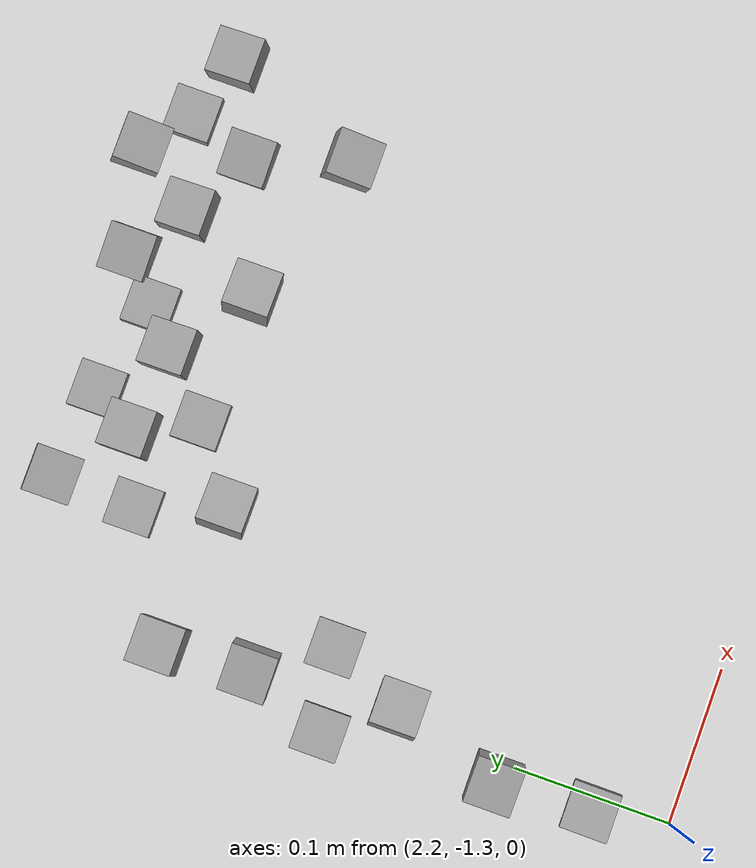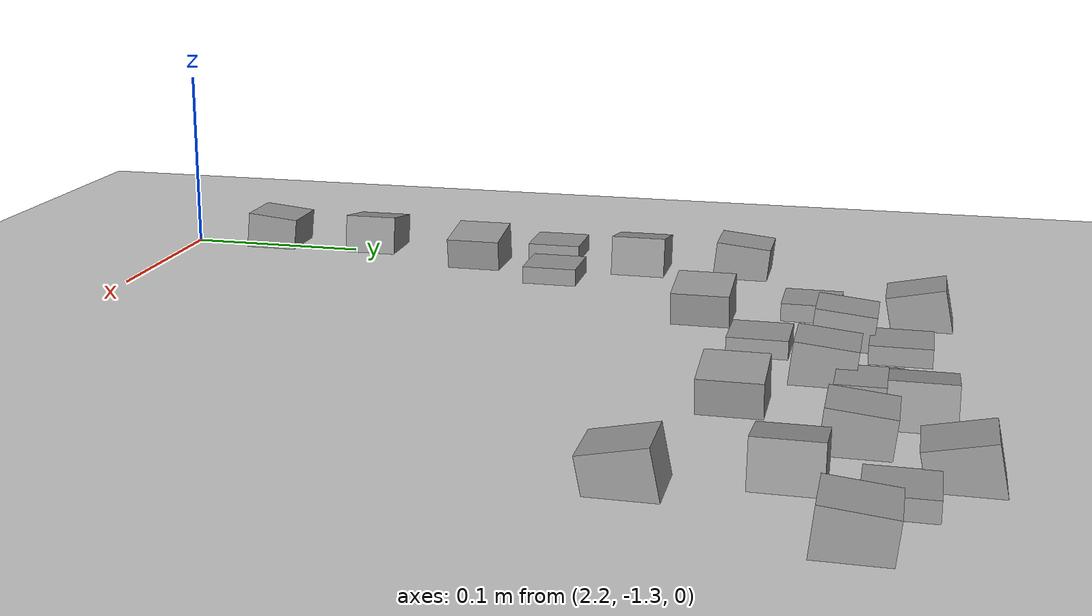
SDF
<sdf version="1.7">
 <world name="default">
  <model name="ground_plane">
   <static>1</static>
   <link name="link">
    <collision name="collision">
     <geometry><plane><normal>0 0 1</normal><size>100 100</size></plane></geometry>
     <surface><friction><ode><mu>100</mu><mu2>50</mu2></ode></friction></surface>
    </collision>
    <visual name="visual">
     <cast_shadows>0</cast_shadows>
     <geometry><plane><normal>0 0 1</normal><size>100 100</size></plane></geometry>
     <material>
      <script><uri>file://media/materials/scripts/gazebo.material</uri><name>Gazebo/Grey</name></script>
     </material>
    </visual>
   </link>
  </model>
  <model name="stone_road_6">
   <link name="link_0_clone_0">
    <inertial>
     <mass>1</mass>
     <inertia>
      <ixx>0.166667</ixx>
      <ixy>0</ixy>
      <ixz>0</ixz>
      <iyy>0.166667</iyy>
      <iyz>0</iyz>
      <izz>0.166667</izz>
     </inertia>
    </inertial>
    <pose>-0.104982 -0.15412 0.003778 0.2 -0 0</pose>
    <kinematic>1</kinematic>
    <visual name="visual">
     <geometry><box><size>0.03 0.03 0.03</size></box></geometry>
     <material>
      <lighting>1</lighting>
      <script><uri>file://media/materials/scripts/gazebo.material</uri><name>Gazebo/Grey</name></script>
      <shader type="pixel"><normal_map>__default__</normal_map></shader>
      <ambient>0.3 0.3 0.3 1</ambient>
      <diffuse>0.7 0.7 0.7 1</diffuse>
      <specular>0.01 0.01 0.01 1</specular>
      <emissive>0 0 0 1</emissive>
     </material>
    </visual>
    <collision name="collision">
     <geometry><box><size>0.03 0.03 0.03</size></box></geometry>
     <surface>
      <friction>
       <ode><mu>1</mu><mu2>1</mu2><fdir1>0 0 0</fdir1><slip1>0</slip1><slip2>0</slip2></ode>
       <torsional>
        <coefficient>1</coefficient>
        <patch_radius>0</patch_radius>
        <surface_radius>0</surface_radius>
        <use_patch_radius>1</use_patch_radius>
        <ode><slip>0</slip></ode>
       </torsional>
      </friction>
      <bounce><restitution_coefficient>0</restitution_coefficient><threshold>1e+06</threshold></bounce>
      <contact>
       <collide_without_contact>0</collide_without_contact>
       <collide_without_contact_bitmask>1</collide_without_contact_bitmask>
       <collide_bitmask>1</collide_bitmask>
       <ode>
        <soft_cfm>0</soft_cfm>
        <soft_erp>0.2</soft_erp>
        <kp>1e+13</kp>
        <kd>1</kd>
        <max_vel>0.01</max_vel>
        <min_depth>0</min_depth>
       </ode>
       <bullet>
        <split_impulse>1</split_impulse>
        <split_impulse_penetration_threshold>-0.01</split_impulse_penetration_threshold>
        <soft_cfm>0</soft_cfm>
        <soft_erp>0.2</soft_erp>
        <kp>1e+13</kp>
        <kd>1</kd>
       </bullet>
      </contact>
     </surface>
    </collision>
   </link>
   <link name="link_0_clone_12">
    <inertial>
     <mass>1</mass>
     <inertia>
      <ixx>0.166667</ixx>
      <ixy>0</ixy>
      <ixz>0</ixz>
      <iyy>0.166667</iyy>
      <iyz>0</iyz>
      <izz>0.166667</izz>
     </inertia>
    </inertial>
    <pose>0.142624 -0.262715 0.003778 0.2 -0 0</pose>
    <kinematic>1</kinematic>
    <visual name="visual">
     <geometry><box><size>0.03 0.03 0.03</size></box></geometry>
     <material>
      <lighting>1</lighting>
      <script><uri>file://media/materials/scripts/gazebo.material</uri><name>Gazebo/Grey</name></script>
      <shader type="pixel"><normal_map>__default__</normal_map></shader>
      <ambient>0.3 0.3 0.3 1</ambient>
      <diffuse>0.7 0.7 0.7 1</diffuse>
      <specular>0.01 0.01 0.01 1</specular>
      <emissive>0 0 0 1</emissive>
     </material>
    </visual>
    <collision name="collision">
     <geometry><box><size>0.03 0.03 0.03</size></box></geometry>
     <surface>
      <friction>
       <ode><mu>1</mu><mu2>1</mu2><fdir1>0 0 0</fdir1><slip1>0</slip1><slip2>0</slip2></ode>
       <torsional>
        <coefficient>1</coefficient>
        <patch_radius>0</patch_radius>
        <surface_radius>0</surface_radius>
        <use_patch_radius>1</use_patch_radius>
        <ode><slip>0</slip></ode>
       </torsional>
      </friction>
      <bounce><restitution_coefficient>0</restitution_coefficient><threshold>1e+06</threshold></bounce>
      <contact>
       <collide_without_contact>0</collide_without_contact>
       <collide_without_contact_bitmask>1</collide_without_contact_bitmask>
       <collide_bitmask>1</collide_bitmask>
       <ode>
        <soft_cfm>0</soft_cfm>
        <soft_erp>0.2</soft_erp>
        <kp>1e+13</kp>
        <kd>1</kd>
        <max_vel>0.01</max_vel>
        <min_depth>0</min_depth>
       </ode>
       <bullet>
        <split_impulse>1</split_impulse>
        <split_impulse_penetration_threshold>-0.01</split_impulse_penetration_threshold>
        <soft_cfm>0</soft_cfm>
        <soft_erp>0.2</soft_erp>
        <kp>1e+13</kp>
        <kd>1</kd>
       </bullet>
      </contact>
     </surface>
    </collision>
   </link>
   <link name="link_0_clone_13">
    <inertial>
     <mass>1</mass>
     <inertia>
      <ixx>0.166667</ixx>
      <ixy>0</ixy>
      <ixz>0</ixz>
      <iyy>0.166667</iyy>
      <iyz>0</iyz>
      <izz>0.166667</izz>
     </inertia>
    </inertial>
    <pose>0.107601 -0.134881 0.003778 0.2 -0 0</pose>
    <kinematic>1</kinematic>
    <visual name="visual">
     <geometry><box><size>0.03 0.03 0.03</size></box></geometry>
     <material>
      <lighting>1</lighting>
      <script><uri>file://media/materials/scripts/gazebo.material</uri><name>Gazebo/Grey</name></script>
      <shader type="pixel"><normal_map>__default__</normal_map></shader>
      <ambient>0.3 0.3 0.3 1</ambient>
      <diffuse>0.7 0.7 0.7 1</diffuse>
      <specular>0.01 0.01 0.01 1</specular>
      <emissive>0 0 0 1</emissive>
     </material>
    </visual>
    <collision name="collision">
     <geometry><box><size>0.03 0.03 0.03</size></box></geometry>
     <surface>
      <friction>
       <ode><mu>1</mu><mu2>1</mu2><fdir1>0 0 0</fdir1><slip1>0</slip1><slip2>0</slip2></ode>
       <torsional>
        <coefficient>1</coefficient>
        <patch_radius>0</patch_radius>
        <surface_radius>0</surface_radius>
        <use_patch_radius>1</use_patch_radius>
        <ode><slip>0</slip></ode>
       </torsional>
      </friction>
      <bounce><restitution_coefficient>0</restitution_coefficient><threshold>1e+06</threshold></bounce>
      <contact>
       <collide_without_contact>0</collide_without_contact>
       <collide_without_contact_bitmask>1</collide_without_contact_bitmask>
       <collide_bitmask>1</collide_bitmask>
       <ode>
        <soft_cfm>0</soft_cfm>
        <soft_erp>0.2</soft_erp>
        <kp>1e+13</kp>
        <kd>1</kd>
        <max_vel>0.01</max_vel>
        <min_depth>0</min_depth>
       </ode>
       <bullet>
        <split_impulse>1</split_impulse>
        <split_impulse_penetration_threshold>-0.01</split_impulse_penetration_threshold>
        <soft_cfm>0</soft_cfm>
        <soft_erp>0.2</soft_erp>
        <kp>1e+13</kp>
        <kd>1</kd>
       </bullet>
      </contact>
     </surface>
    </collision>
   </link>
   <link name="link_0_clone_2_clone_2_clone_13_clone_clone_10">
    <inertial>
     <mass>1</mass>
     <inertia>
      <ixx>0.166667</ixx>
      <ixy>0</ixy>
      <ixz>0</ixz>
      <iyy>0.166667</iyy>
      <iyz>0</iyz>
      <izz>0.166667</izz>
     </inertia>
    </inertial>
    <pose>-0.006825 -0.196489 0.003778 -0.1 0 0</pose>
    <kinematic>1</kinematic>
    <visual name="visual">
     <geometry><box><size>0.03 0.03 0.03</size></box></geometry>
     <material>
      <lighting>1</lighting>
      <script><uri>file://media/materials/scripts/gazebo.material</uri><name>Gazebo/Grey</name></script>
      <shader type="pixel"><normal_map>__default__</normal_map></shader>
      <ambient>0.3 0.3 0.3 1</ambient>
      <diffuse>0.7 0.7 0.7 1</diffuse>
      <specular>0.01 0.01 0.01 1</specular>
      <emissive>0 0 0 1</emissive>
     </material>
    </visual>
    <collision name="collision">
     <geometry><box><size>0.03 0.03 0.03</size></box></geometry>
     <surface>
      <friction>
       <ode><mu>1</mu><mu2>1</mu2><fdir1>0 0 0</fdir1><slip1>0</slip1><slip2>0</slip2></ode>
       <torsional>
        <coefficient>1</coefficient>
        <patch_radius>0</patch_radius>
        <surface_radius>0</surface_radius>
        <use_patch_radius>1</use_patch_radius>
        <ode><slip>0</slip></ode>
       </torsional>
      </friction>
      <bounce><restitution_coefficient>0</restitution_coefficient><threshold>1e+06</threshold></bounce>
      <contact>
       <collide_without_contact>0</collide_without_contact>
       <collide_without_contact_bitmask>1</collide_without_contact_bitmask>
       <collide_bitmask>1</collide_bitmask>
       <ode>
        <soft_cfm>0</soft_cfm>
        <soft_erp>0.2</soft_erp>
        <kp>1e+13</kp>
        <kd>1</kd>
        <max_vel>0.01</max_vel>
        <min_depth>0</min_depth>
       </ode>
       <bullet>
        <split_impulse>1</split_impulse>
        <split_impulse_penetration_threshold>-0.01</split_impulse_penetration_threshold>
        <soft_cfm>0</soft_cfm>
        <soft_erp>0.2</soft_erp>
        <kp>1e+13</kp>
        <kd>1</kd>
       </bullet>
      </contact>
     </surface>
    </collision>
   </link>
   <link name="link_0_clone_2_clone_2_clone_13_clone_clone_11">
    <inertial>
     <mass>1</mass>
     <inertia>
      <ixx>0.166667</ixx>
      <ixy>0</ixy>
      <ixz>0</ixz>
      <iyy>0.166667</iyy>
      <iyz>0</iyz>
      <izz>0.166667</izz>
     </inertia>
    </inertial>
    <pose>0.178889 -0.173779 0.003778 -0.1 0 0</pose>
    <kinematic>1</kinematic>
    <visual name="visual">
     <geometry><box><size>0.03 0.03 0.03</size></box></geometry>
     <material>
      <lighting>1</lighting>
      <script><uri>file://media/materials/scripts/gazebo.material</uri><name>Gazebo/Grey</name></script>
      <shader type="pixel"><normal_map>__default__</normal_map></shader>
      <ambient>0.3 0.3 0.3 1</ambient>
      <diffuse>0.7 0.7 0.7 1</diffuse>
      <specular>0.01 0.01 0.01 1</specular>
      <emissive>0 0 0 1</emissive>
     </material>
    </visual>
    <collision name="collision">
     <geometry><box><size>0.03 0.03 0.03</size></box></geometry>
     <surface>
      <friction>
       <ode><mu>1</mu><mu2>1</mu2><fdir1>0 0 0</fdir1><slip1>0</slip1><slip2>0</slip2></ode>
       <torsional>
        <coefficient>1</coefficient>
        <patch_radius>0</patch_radius>
        <surface_radius>0</surface_radius>
        <use_patch_radius>1</use_patch_radius>
        <ode><slip>0</slip></ode>
       </torsional>
      </friction>
      <bounce><restitution_coefficient>0</restitution_coefficient><threshold>1e+06</threshold></bounce>
      <contact>
       <collide_without_contact>0</collide_without_contact>
       <collide_without_contact_bitmask>1</collide_without_contact_bitmask>
       <collide_bitmask>1</collide_bitmask>
       <ode>
        <soft_cfm>0</soft_cfm>
        <soft_erp>0.2</soft_erp>
        <kp>1e+13</kp>
        <kd>1</kd>
        <max_vel>0.01</max_vel>
        <min_depth>0</min_depth>
       </ode>
       <bullet>
        <split_impulse>1</split_impulse>
        <split_impulse_penetration_threshold>-0.01</split_impulse_penetration_threshold>
        <soft_cfm>0</soft_cfm>
        <soft_erp>0.2</soft_erp>
        <kp>1e+13</kp>
        <kd>1</kd>
       </bullet>
      </contact>
     </surface>
    </collision>
   </link>
   <link name="link_0_clone_2_clone_2_clone_13_clone_clone_12">
    <inertial>
     <mass>1</mass>
     <inertia>
      <ixx>0.166667</ixx>
      <ixy>0</ixy>
      <ixz>0</ixz>
      <iyy>0.166667</iyy>
      <iyz>0</iyz>
      <izz>0.166667</izz>
     </inertia>
    </inertial>
    <pose>0.078701 -0.177208 0.003778 -0.1 0 0</pose>
    <kinematic>1</kinematic>
    <visual name="visual">
     <geometry><box><size>0.03 0.03 0.03</size></box></geometry>
     <material>
      <lighting>1</lighting>
      <script><uri>file://media/materials/scripts/gazebo.material</uri><name>Gazebo/Grey</name></script>
      <shader type="pixel"><normal_map>__default__</normal_map></shader>
      <ambient>0.3 0.3 0.3 1</ambient>
      <diffuse>0.7 0.7 0.7 1</diffuse>
      <specular>0.01 0.01 0.01 1</specular>
      <emissive>0 0 0 1</emissive>
     </material>
    </visual>
    <collision name="collision">
     <geometry><box><size>0.03 0.03 0.03</size></box></geometry>
     <surface>
      <friction>
       <ode><mu>1</mu><mu2>1</mu2><fdir1>0 0 0</fdir1><slip1>0</slip1><slip2>0</slip2></ode>
       <torsional>
        <coefficient>1</coefficient>
        <patch_radius>0</patch_radius>
        <surface_radius>0</surface_radius>
        <use_patch_radius>1</use_patch_radius>
        <ode><slip>0</slip></ode>
       </torsional>
      </friction>
      <bounce><restitution_coefficient>0</restitution_coefficient><threshold>1e+06</threshold></bounce>
      <contact>
       <collide_without_contact>0</collide_without_contact>
       <collide_without_contact_bitmask>1</collide_without_contact_bitmask>
       <collide_bitmask>1</collide_bitmask>
       <ode>
        <soft_cfm>0</soft_cfm>
        <soft_erp>0.2</soft_erp>
        <kp>1e+13</kp>
        <kd>1</kd>
        <max_vel>0.01</max_vel>
        <min_depth>0</min_depth>
       </ode>
       <bullet>
        <split_impulse>1</split_impulse>
        <split_impulse_penetration_threshold>-0.01</split_impulse_penetration_threshold>
        <soft_cfm>0</soft_cfm>
        <soft_erp>0.2</soft_erp>
        <kp>1e+13</kp>
        <kd>1</kd>
       </bullet>
      </contact>
     </surface>
    </collision>
   </link>
   <link name="link_0_clone_2_clone_2_clone_13_clone_clone_16_clone_17">
    <inertial>
     <mass>1</mass>
     <inertia>
      <ixx>0.166667</ixx>
      <ixy>0</ixy>
      <ixz>0</ixz>
      <iyy>0.166667</iyy>
      <iyz>0</iyz>
      <izz>0.166667</izz>
     </inertia>
    </inertial>
    <pose>0.014877 -0.175392 -0.006222 0 -0 0</pose>
    <kinematic>1</kinematic>
    <visual name="visual">
     <geometry><box><size>0.03 0.03 0.03</size></box></geometry>
     <material>
      <lighting>1</lighting>
      <script><uri>file://media/materials/scripts/gazebo.material</uri><name>Gazebo/Grey</name></script>
      <shader type="pixel"><normal_map>__default__</normal_map></shader>
      <ambient>0.3 0.3 0.3 1</ambient>
      <diffuse>0.7 0.7 0.7 1</diffuse>
      <specular>0.01 0.01 0.01 1</specular>
      <emissive>0 0 0 1</emissive>
     </material>
    </visual>
    <collision name="collision">
     <geometry><box><size>0.03 0.03 0.03</size></box></geometry>
     <surface>
      <friction>
       <ode><mu>1</mu><mu2>1</mu2><fdir1>0 0 0</fdir1><slip1>0</slip1><slip2>0</slip2></ode>
       <torsional>
        <coefficient>1</coefficient>
        <patch_radius>0</patch_radius>
        <surface_radius>0</surface_radius>
        <use_patch_radius>1</use_patch_radius>
        <ode><slip>0</slip></ode>
       </torsional>
      </friction>
      <bounce><restitution_coefficient>0</restitution_coefficient><threshold>1e+06</threshold></bounce>
      <contact>
       <collide_without_contact>0</collide_without_contact>
       <collide_without_contact_bitmask>1</collide_without_contact_bitmask>
       <collide_bitmask>1</collide_bitmask>
       <ode>
        <soft_cfm>0</soft_cfm>
        <soft_erp>0.2</soft_erp>
        <kp>1e+13</kp>
        <kd>1</kd>
        <max_vel>0.01</max_vel>
        <min_depth>0</min_depth>
       </ode>
       <bullet>
        <split_impulse>1</split_impulse>
        <split_impulse_penetration_threshold>-0.01</split_impulse_penetration_threshold>
        <soft_cfm>0</soft_cfm>
        <soft_erp>0.2</soft_erp>
        <kp>1e+13</kp>
        <kd>1</kd>
       </bullet>
      </contact>
     </surface>
    </collision>
   </link>
   <link name="link_0_clone_2_clone_2_clone_13_clone_clone_16_clone_18">
    <inertial>
     <mass>1</mass>
     <inertia>
      <ixx>0.166667</ixx>
      <ixy>0</ixy>
      <ixz>0</ixz>
      <iyy>0.166667</iyy>
      <iyz>0</iyz>
      <izz>0.166667</izz>
     </inertia>
    </inertial>
    <pose>0.137197 -0.158693 -0.006222 0 -0 0</pose>
    <kinematic>1</kinematic>
    <visual name="visual">
     <geometry><box><size>0.03 0.03 0.03</size></box></geometry>
     <material>
      <lighting>1</lighting>
      <script><uri>file://media/materials/scripts/gazebo.material</uri><name>Gazebo/Grey</name></script>
      <shader type="pixel"><normal_map>__default__</normal_map></shader>
      <ambient>0.3 0.3 0.3 1</ambient>
      <diffuse>0.7 0.7 0.7 1</diffuse>
      <specular>0.01 0.01 0.01 1</specular>
      <emissive>0 0 0 1</emissive>
     </material>
    </visual>
    <collision name="collision">
     <geometry><box><size>0.03 0.03 0.03</size></box></geometry>
     <surface>
      <friction>
       <ode><mu>1</mu><mu2>1</mu2><fdir1>0 0 0</fdir1><slip1>0</slip1><slip2>0</slip2></ode>
       <torsional>
        <coefficient>1</coefficient>
        <patch_radius>0</patch_radius>
        <surface_radius>0</surface_radius>
        <use_patch_radius>1</use_patch_radius>
        <ode><slip>0</slip></ode>
       </torsional>
      </friction>
      <bounce><restitution_coefficient>0</restitution_coefficient><threshold>1e+06</threshold></bounce>
      <contact>
       <collide_without_contact>0</collide_without_contact>
       <collide_without_contact_bitmask>1</collide_without_contact_bitmask>
       <collide_bitmask>1</collide_bitmask>
       <ode>
        <soft_cfm>0</soft_cfm>
        <soft_erp>0.2</soft_erp>
        <kp>1e+13</kp>
        <kd>1</kd>
        <max_vel>0.01</max_vel>
        <min_depth>0</min_depth>
       </ode>
       <bullet>
        <split_impulse>1</split_impulse>
        <split_impulse_penetration_threshold>-0.01</split_impulse_penetration_threshold>
        <soft_cfm>0</soft_cfm>
        <soft_erp>0.2</soft_erp>
        <kp>1e+13</kp>
        <kd>1</kd>
       </bullet>
      </contact>
     </surface>
    </collision>
   </link>
   <link name="link_0_clone_2_clone_2_clone_13_clone_clone_16_clone_28">
    <inertial>
     <mass>1</mass>
     <inertia>
      <ixx>0.166667</ixx>
      <ixy>0</ixy>
      <ixz>0</ixz>
      <iyy>0.166667</iyy>
      <iyz>0</iyz>
      <izz>0.166667</izz>
     </inertia>
    </inertial>
    <pose>-0.10708 -0.209042 -0.006222 0 -0 0</pose>
    <kinematic>1</kinematic>
    <visual name="visual">
     <geometry><box><size>0.03 0.03 0.03</size></box></geometry>
     <material>
      <lighting>1</lighting>
      <script><uri>file://media/materials/scripts/gazebo.material</uri><name>Gazebo/Grey</name></script>
      <shader type="pixel"><normal_map>__default__</normal_map></shader>
      <ambient>0.3 0.3 0.3 1</ambient>
      <diffuse>0.7 0.7 0.7 1</diffuse>
      <specular>0.01 0.01 0.01 1</specular>
      <emissive>0 0 0 1</emissive>
     </material>
    </visual>
    <collision name="collision">
     <geometry><box><size>0.03 0.03 0.03</size></box></geometry>
     <surface>
      <friction>
       <ode><mu>1</mu><mu2>1</mu2><fdir1>0 0 0</fdir1><slip1>0</slip1><slip2>0</slip2></ode>
       <torsional>
        <coefficient>1</coefficient>
        <patch_radius>0</patch_radius>
        <surface_radius>0</surface_radius>
        <use_patch_radius>1</use_patch_radius>
        <ode><slip>0</slip></ode>
       </torsional>
      </friction>
      <bounce><restitution_coefficient>0</restitution_coefficient><threshold>1e+06</threshold></bounce>
      <contact>
       <collide_without_contact>0</collide_without_contact>
       <collide_without_contact_bitmask>1</collide_without_contact_bitmask>
       <collide_bitmask>1</collide_bitmask>
       <ode>
        <soft_cfm>0</soft_cfm>
        <soft_erp>0.2</soft_erp>
        <kp>1e+13</kp>
        <kd>1</kd>
        <max_vel>0.01</max_vel>
        <min_depth>0</min_depth>
       </ode>
       <bullet>
        <split_impulse>1</split_impulse>
        <split_impulse_penetration_threshold>-0.01</split_impulse_penetration_threshold>
        <soft_cfm>0</soft_cfm>
        <soft_erp>0.2</soft_erp>
        <kp>1e+13</kp>
        <kd>1</kd>
       </bullet>
      </contact>
     </surface>
    </collision>
   </link>
   <link name="link_0_clone_2_clone_2_clone_13_clone_clone_16_clone_29">
    <inertial>
     <mass>1</mass>
     <inertia>
      <ixx>0.166667</ixx>
      <ixy>0</ixy>
      <ixz>0</ixz>
      <iyy>0.166667</iyy>
      <iyz>0</iyz>
      <izz>0.166667</izz>
     </inertia>
    </inertial>
    <pose>-0.042964 -0.229632 -0.006222 0 -0 0</pose>
    <kinematic>1</kinematic>
    <visual name="visual">
     <geometry><box><size>0.03 0.03 0.03</size></box></geometry>
     <material>
      <lighting>1</lighting>
      <script><uri>file://media/materials/scripts/gazebo.material</uri><name>Gazebo/Grey</name></script>
      <shader type="pixel"><normal_map>__default__</normal_map></shader>
      <ambient>0.3 0.3 0.3 1</ambient>
      <diffuse>0.7 0.7 0.7 1</diffuse>
      <specular>0.01 0.01 0.01 1</specular>
      <emissive>0 0 0 1</emissive>
     </material>
    </visual>
    <collision name="collision">
     <geometry><box><size>0.03 0.03 0.03</size></box></geometry>
     <surface>
      <friction>
       <ode><mu>1</mu><mu2>1</mu2><fdir1>0 0 0</fdir1><slip1>0</slip1><slip2>0</slip2></ode>
       <torsional>
        <coefficient>1</coefficient>
        <patch_radius>0</patch_radius>
        <surface_radius>0</surface_radius>
        <use_patch_radius>1</use_patch_radius>
        <ode><slip>0</slip></ode>
       </torsional>
      </friction>
      <bounce><restitution_coefficient>0</restitution_coefficient><threshold>1e+06</threshold></bounce>
      <contact>
       <collide_without_contact>0</collide_without_contact>
       <collide_without_contact_bitmask>1</collide_without_contact_bitmask>
       <collide_bitmask>1</collide_bitmask>
       <ode>
        <soft_cfm>0</soft_cfm>
        <soft_erp>0.2</soft_erp>
        <kp>1e+13</kp>
        <kd>1</kd>
        <max_vel>0.01</max_vel>
        <min_depth>0</min_depth>
       </ode>
       <bullet>
        <split_impulse>1</split_impulse>
        <split_impulse_penetration_threshold>-0.01</split_impulse_penetration_threshold>
        <soft_cfm>0</soft_cfm>
        <soft_erp>0.2</soft_erp>
        <kp>1e+13</kp>
        <kd>1</kd>
       </bullet>
      </contact>
     </surface>
    </collision>
   </link>
   <link name="link_0_clone_2_clone_2_clone_13_clone_clone_16_clone_8">
    <inertial>
     <mass>1</mass>
     <inertia>
      <ixx>0.166667</ixx>
      <ixy>0</ixy>
      <ixz>0</ixz>
      <iyy>0.166667</iyy>
      <iyz>0</iyz>
      <izz>0.166667</izz>
     </inertia>
    </inertial>
    <pose>-0.045715 -0.162471 -0.006222 0 -0 0</pose>
    <kinematic>1</kinematic>
    <visual name="visual">
     <geometry><box><size>0.03 0.03 0.03</size></box></geometry>
     <material>
      <lighting>1</lighting>
      <script><uri>file://media/materials/scripts/gazebo.material</uri><name>Gazebo/Grey</name></script>
      <shader type="pixel"><normal_map>__default__</normal_map></shader>
      <ambient>0.3 0.3 0.3 1</ambient>
      <diffuse>0.7 0.7 0.7 1</diffuse>
      <specular>0.01 0.01 0.01 1</specular>
      <emissive>0 0 0 1</emissive>
     </material>
    </visual>
    <collision name="collision">
     <geometry><box><size>0.03 0.03 0.03</size></box></geometry>
     <surface>
      <friction>
       <ode><mu>1</mu><mu2>1</mu2><fdir1>0 0 0</fdir1><slip1>0</slip1><slip2>0</slip2></ode>
       <torsional>
        <coefficient>1</coefficient>
        <patch_radius>0</patch_radius>
        <surface_radius>0</surface_radius>
        <use_patch_radius>1</use_patch_radius>
        <ode><slip>0</slip></ode>
       </torsional>
      </friction>
      <bounce><restitution_coefficient>0</restitution_coefficient><threshold>1e+06</threshold></bounce>
      <contact>
       <collide_without_contact>0</collide_without_contact>
       <collide_without_contact_bitmask>1</collide_without_contact_bitmask>
       <collide_bitmask>1</collide_bitmask>
       <ode>
        <soft_cfm>0</soft_cfm>
        <soft_erp>0.2</soft_erp>
        <kp>1e+13</kp>
        <kd>1</kd>
        <max_vel>0.01</max_vel>
        <min_depth>0</min_depth>
       </ode>
       <bullet>
        <split_impulse>1</split_impulse>
        <split_impulse_penetration_threshold>-0.01</split_impulse_penetration_threshold>
        <soft_cfm>0</soft_cfm>
        <soft_erp>0.2</soft_erp>
        <kp>1e+13</kp>
        <kd>1</kd>
       </bullet>
      </contact>
     </surface>
    </collision>
   </link>
   <link name="link_0_clone_2_clone_2_clone_13_clone_clone_9">
    <inertial>
     <mass>1</mass>
     <inertia>
      <ixx>0.166667</ixx>
      <ixy>0</ixy>
      <ixz>0</ixz>
      <iyy>0.166667</iyy>
      <iyz>0</iyz>
      <izz>0.166667</izz>
     </inertia>
    </inertial>
    <pose>-0.062692 -0.190617 0.003778 -0.1 0 0</pose>
    <kinematic>1</kinematic>
    <visual name="visual">
     <geometry><box><size>0.03 0.03 0.03</size></box></geometry>
     <material>
      <lighting>1</lighting>
      <script><uri>file://media/materials/scripts/gazebo.material</uri><name>Gazebo/Grey</name></script>
      <shader type="pixel"><normal_map>__default__</normal_map></shader>
      <ambient>0.3 0.3 0.3 1</ambient>
      <diffuse>0.7 0.7 0.7 1</diffuse>
      <specular>0.01 0.01 0.01 1</specular>
      <emissive>0 0 0 1</emissive>
     </material>
    </visual>
    <collision name="collision">
     <geometry><box><size>0.03 0.03 0.03</size></box></geometry>
     <surface>
      <friction>
       <ode><mu>1</mu><mu2>1</mu2><fdir1>0 0 0</fdir1><slip1>0</slip1><slip2>0</slip2></ode>
       <torsional>
        <coefficient>1</coefficient>
        <patch_radius>0</patch_radius>
        <surface_radius>0</surface_radius>
        <use_patch_radius>1</use_patch_radius>
        <ode><slip>0</slip></ode>
       </torsional>
      </friction>
      <bounce><restitution_coefficient>0</restitution_coefficient><threshold>1e+06</threshold></bounce>
      <contact>
       <collide_without_contact>0</collide_without_contact>
       <collide_without_contact_bitmask>1</collide_without_contact_bitmask>
       <collide_bitmask>1</collide_bitmask>
       <ode>
        <soft_cfm>0</soft_cfm>
        <soft_erp>0.2</soft_erp>
        <kp>1e+13</kp>
        <kd>1</kd>
        <max_vel>0.01</max_vel>
        <min_depth>0</min_depth>
       </ode>
       <bullet>
        <split_impulse>1</split_impulse>
        <split_impulse_penetration_threshold>-0.01</split_impulse_penetration_threshold>
        <soft_cfm>0</soft_cfm>
        <soft_erp>0.2</soft_erp>
        <kp>1e+13</kp>
        <kd>1</kd>
       </bullet>
      </contact>
     </surface>
    </collision>
   </link>
   <link name="link_0_clone_2_clone_2_clone_4">
    <inertial>
     <mass>1</mass>
     <inertia>
      <ixx>0.166667</ixx>
      <ixy>0</ixy>
      <ixz>0</ixz>
      <iyy>0.166667</iyy>
      <iyz>0</iyz>
      <izz>0.166667</izz>
     </inertia>
    </inertial>
    <pose>0.042048 -0.151731 0.003778 0 -0.15 0</pose>
    <kinematic>1</kinematic>
    <visual name="visual">
     <geometry><box><size>0.03 0.03 0.03</size></box></geometry>
     <material>
      <lighting>1</lighting>
      <script><uri>file://media/materials/scripts/gazebo.material</uri><name>Gazebo/Grey</name></script>
      <shader type="pixel"><normal_map>__default__</normal_map></shader>
      <ambient>0.3 0.3 0.3 1</ambient>
      <diffuse>0.7 0.7 0.7 1</diffuse>
      <specular>0.01 0.01 0.01 1</specular>
      <emissive>0 0 0 1</emissive>
     </material>
    </visual>
    <collision name="collision">
     <geometry><box><size>0.03 0.03 0.03</size></box></geometry>
     <surface>
      <friction>
       <ode><mu>1</mu><mu2>1</mu2><fdir1>0 0 0</fdir1><slip1>0</slip1><slip2>0</slip2></ode>
       <torsional>
        <coefficient>1</coefficient>
        <patch_radius>0</patch_radius>
        <surface_radius>0</surface_radius>
        <use_patch_radius>1</use_patch_radius>
        <ode><slip>0</slip></ode>
       </torsional>
      </friction>
      <bounce><restitution_coefficient>0</restitution_coefficient><threshold>1e+06</threshold></bounce>
      <contact>
       <collide_without_contact>0</collide_without_contact>
       <collide_without_contact_bitmask>1</collide_without_contact_bitmask>
       <collide_bitmask>1</collide_bitmask>
       <ode>
        <soft_cfm>0</soft_cfm>
        <soft_erp>0.2</soft_erp>
        <kp>1e+13</kp>
        <kd>1</kd>
        <max_vel>0.01</max_vel>
        <min_depth>0</min_depth>
       </ode>
       <bullet>
        <split_impulse>1</split_impulse>
        <split_impulse_penetration_threshold>-0.01</split_impulse_penetration_threshold>
        <soft_cfm>0</soft_cfm>
        <soft_erp>0.2</soft_erp>
        <kp>1e+13</kp>
        <kd>1</kd>
       </bullet>
      </contact>
     </surface>
    </collision>
   </link>
   <link name="link_0_clone_2_clone_2_clone_8">
    <inertial>
     <mass>1</mass>
     <inertia>
      <ixx>0.166667</ixx>
      <ixy>0</ixy>
      <ixz>0</ixz>
      <iyy>0.166667</iyy>
      <iyz>0</iyz>
      <izz>0.166667</izz>
     </inertia>
    </inertial>
    <pose>0.122141 -0.201696 0.003778 0 -0.15 0</pose>
    <kinematic>1</kinematic>
    <visual name="visual">
     <geometry><box><size>0.03 0.03 0.03</size></box></geometry>
     <material>
      <lighting>1</lighting>
      <script><uri>file://media/materials/scripts/gazebo.material</uri><name>Gazebo/Grey</name></script>
      <shader type="pixel"><normal_map>__default__</normal_map></shader>
      <ambient>0.3 0.3 0.3 1</ambient>
      <diffuse>0.7 0.7 0.7 1</diffuse>
      <specular>0.01 0.01 0.01 1</specular>
      <emissive>0 0 0 1</emissive>
     </material>
    </visual>
    <collision name="collision">
     <geometry><box><size>0.03 0.03 0.03</size></box></geometry>
     <surface>
      <friction>
       <ode><mu>1</mu><mu2>1</mu2><fdir1>0 0 0</fdir1><slip1>0</slip1><slip2>0</slip2></ode>
       <torsional>
        <coefficient>1</coefficient>
        <patch_radius>0</patch_radius>
        <surface_radius>0</surface_radius>
        <use_patch_radius>1</use_patch_radius>
        <ode><slip>0</slip></ode>
       </torsional>
      </friction>
      <bounce><restitution_coefficient>0</restitution_coefficient><threshold>1e+06</threshold></bounce>
      <contact>
       <collide_without_contact>0</collide_without_contact>
       <collide_without_contact_bitmask>1</collide_without_contact_bitmask>
       <collide_bitmask>1</collide_bitmask>
       <ode>
        <soft_cfm>0</soft_cfm>
        <soft_erp>0.2</soft_erp>
        <kp>1e+13</kp>
        <kd>1</kd>
        <max_vel>0.01</max_vel>
        <min_depth>0</min_depth>
       </ode>
       <bullet>
        <split_impulse>1</split_impulse>
        <split_impulse_penetration_threshold>-0.01</split_impulse_penetration_threshold>
        <soft_cfm>0</soft_cfm>
        <soft_erp>0.2</soft_erp>
        <kp>1e+13</kp>
        <kd>1</kd>
       </bullet>
      </contact>
     </surface>
    </collision>
   </link>
   <link name="link_0_clone_2_clone_6">
    <inertial>
     <mass>1</mass>
     <inertia>
      <ixx>0.166667</ixx>
      <ixy>0</ixy>
      <ixz>0</ixz>
      <iyy>0.166667</iyy>
      <iyz>0</iyz>
      <izz>0.166667</izz>
     </inertia>
    </inertial>
    <pose>-0.087859 -0.263184 0.003778 0 0.15 0</pose>
    <kinematic>1</kinematic>
    <visual name="visual">
     <geometry><box><size>0.03 0.03 0.03</size></box></geometry>
     <material>
      <lighting>1</lighting>
      <script><uri>file://media/materials/scripts/gazebo.material</uri><name>Gazebo/Grey</name></script>
      <shader type="pixel"><normal_map>__default__</normal_map></shader>
      <ambient>0.3 0.3 0.3 1</ambient>
      <diffuse>0.7 0.7 0.7 1</diffuse>
      <specular>0.01 0.01 0.01 1</specular>
      <emissive>0 0 0 1</emissive>
     </material>
    </visual>
    <collision name="collision">
     <geometry><box><size>0.03 0.03 0.03</size></box></geometry>
     <surface>
      <friction>
       <ode><mu>1</mu><mu2>1</mu2><fdir1>0 0 0</fdir1><slip1>0</slip1><slip2>0</slip2></ode>
       <torsional>
        <coefficient>1</coefficient>
        <patch_radius>0</patch_radius>
        <surface_radius>0</surface_radius>
        <use_patch_radius>1</use_patch_radius>
        <ode><slip>0</slip></ode>
       </torsional>
      </friction>
      <bounce><restitution_coefficient>0</restitution_coefficient><threshold>1e+06</threshold></bounce>
      <contact>
       <collide_without_contact>0</collide_without_contact>
       <collide_without_contact_bitmask>1</collide_without_contact_bitmask>
       <collide_bitmask>1</collide_bitmask>
       <ode>
        <soft_cfm>0</soft_cfm>
        <soft_erp>0.2</soft_erp>
        <kp>1e+13</kp>
        <kd>1</kd>
        <max_vel>0.01</max_vel>
        <min_depth>0</min_depth>
       </ode>
       <bullet>
        <split_impulse>1</split_impulse>
        <split_impulse_penetration_threshold>-0.01</split_impulse_penetration_threshold>
        <soft_cfm>0</soft_cfm>
        <soft_erp>0.2</soft_erp>
        <kp>1e+13</kp>
        <kd>1</kd>
       </bullet>
      </contact>
     </surface>
    </collision>
   </link>
   <link name="link_0_clone_2_clone_7">
    <inertial>
     <mass>1</mass>
     <inertia>
      <ixx>0.166667</ixx>
      <ixy>0</ixy>
      <ixz>0</ixz>
      <iyy>0.166667</iyy>
      <iyz>0</iyz>
      <izz>0.166667</izz>
     </inertia>
    </inertial>
    <pose>0.04255 -0.232691 0.003778 0 0.15 0</pose>
    <kinematic>1</kinematic>
    <visual name="visual">
     <geometry><box><size>0.03 0.03 0.03</size></box></geometry>
     <material>
      <lighting>1</lighting>
      <script><uri>file://media/materials/scripts/gazebo.material</uri><name>Gazebo/Grey</name></script>
      <shader type="pixel"><normal_map>__default__</normal_map></shader>
      <ambient>0.3 0.3 0.3 1</ambient>
      <diffuse>0.7 0.7 0.7 1</diffuse>
      <specular>0.01 0.01 0.01 1</specular>
      <emissive>0 0 0 1</emissive>
     </material>
    </visual>
    <collision name="collision">
     <geometry><box><size>0.03 0.03 0.03</size></box></geometry>
     <surface>
      <friction>
       <ode><mu>1</mu><mu2>1</mu2><fdir1>0 0 0</fdir1><slip1>0</slip1><slip2>0</slip2></ode>
       <torsional>
        <coefficient>1</coefficient>
        <patch_radius>0</patch_radius>
        <surface_radius>0</surface_radius>
        <use_patch_radius>1</use_patch_radius>
        <ode><slip>0</slip></ode>
       </torsional>
      </friction>
      <bounce><restitution_coefficient>0</restitution_coefficient><threshold>1e+06</threshold></bounce>
      <contact>
       <collide_without_contact>0</collide_without_contact>
       <collide_without_contact_bitmask>1</collide_without_contact_bitmask>
       <collide_bitmask>1</collide_bitmask>
       <ode>
        <soft_cfm>0</soft_cfm>
        <soft_erp>0.2</soft_erp>
        <kp>1e+13</kp>
        <kd>1</kd>
        <max_vel>0.01</max_vel>
        <min_depth>0</min_depth>
       </ode>
       <bullet>
        <split_impulse>1</split_impulse>
        <split_impulse_penetration_threshold>-0.01</split_impulse_penetration_threshold>
        <soft_cfm>0</soft_cfm>
        <soft_erp>0.2</soft_erp>
        <kp>1e+13</kp>
        <kd>1</kd>
       </bullet>
      </contact>
     </surface>
    </collision>
   </link>
   <static>0</static>
   <pose>2.379 -0.715905 -0 0 -0 0</pose>
  </model>
  <model name="stone_road_10">
   <link name="link_0_clone_2_clone_2_clone">
    <inertial>
     <mass>1</mass>
     <inertia>
      <ixx>0.166667</ixx>
      <ixy>0</ixy>
      <ixz>0</ixz>
      <iyy>0.166667</iyy>
      <iyz>0</iyz>
      <izz>0.166667</izz>
     </inertia>
    </inertial>
    <pose>0.189059 0.051135 0.003778 0 -0.15 0</pose>
    <kinematic>1</kinematic>
    <visual name="visual">
     <geometry><box><size>0.03 0.03 0.03</size></box></geometry>
     <material>
      <lighting>1</lighting>
      <script><uri>file://media/materials/scripts/gazebo.material</uri><name>Gazebo/Grey</name></script>
      <shader type="pixel"><normal_map>__default__</normal_map></shader>
      <ambient>0.3 0.3 0.3 1</ambient>
      <diffuse>0.7 0.7 0.7 1</diffuse>
      <specular>0.01 0.01 0.01 1</specular>
      <emissive>0 0 0 1</emissive>
     </material>
    </visual>
    <collision name="collision">
     <geometry><box><size>0.03 0.03 0.03</size></box></geometry>
     <surface>
      <friction>
       <ode><mu>1</mu><mu2>1</mu2><fdir1>0 0 0</fdir1><slip1>0</slip1><slip2>0</slip2></ode>
       <torsional>
        <coefficient>1</coefficient>
        <patch_radius>0</patch_radius>
        <surface_radius>0</surface_radius>
        <use_patch_radius>1</use_patch_radius>
        <ode><slip>0</slip></ode>
       </torsional>
      </friction>
      <bounce><restitution_coefficient>0</restitution_coefficient><threshold>1e+06</threshold></bounce>
      <contact>
       <collide_without_contact>0</collide_without_contact>
       <collide_without_contact_bitmask>1</collide_without_contact_bitmask>
       <collide_bitmask>1</collide_bitmask>
       <ode>
        <soft_cfm>0</soft_cfm>
        <soft_erp>0.2</soft_erp>
        <kp>1e+13</kp>
        <kd>1</kd>
        <max_vel>0.01</max_vel>
        <min_depth>0</min_depth>
       </ode>
       <bullet>
        <split_impulse>1</split_impulse>
        <split_impulse_penetration_threshold>-0.01</split_impulse_penetration_threshold>
        <soft_cfm>0</soft_cfm>
        <soft_erp>0.2</soft_erp>
        <kp>1e+13</kp>
        <kd>1</kd>
       </bullet>
      </contact>
     </surface>
    </collision>
   </link>
   <link name="link_0_clone_2_clone_2_clone_13_clone_clone">
    <inertial>
     <mass>1</mass>
     <inertia>
      <ixx>0.166667</ixx>
      <ixy>0</ixy>
      <ixz>0</ixz>
      <iyy>0.166667</iyy>
      <iyz>0</iyz>
      <izz>0.166667</izz>
     </inertia>
    </inertial>
    <pose>0.184456 0.108712 0.003778 -0.1 0 0</pose>
    <kinematic>1</kinematic>
    <visual name="visual">
     <geometry><box><size>0.03 0.03 0.03</size></box></geometry>
     <material>
      <lighting>1</lighting>
      <script><uri>file://media/materials/scripts/gazebo.material</uri><name>Gazebo/Grey</name></script>
      <shader type="pixel"><normal_map>__default__</normal_map></shader>
      <ambient>0.3 0.3 0.3 1</ambient>
      <diffuse>0.7 0.7 0.7 1</diffuse>
      <specular>0.01 0.01 0.01 1</specular>
      <emissive>0 0 0 1</emissive>
     </material>
    </visual>
    <collision name="collision">
     <geometry><box><size>0.03 0.03 0.03</size></box></geometry>
     <surface>
      <friction>
       <ode><mu>1</mu><mu2>1</mu2><fdir1>0 0 0</fdir1><slip1>0</slip1><slip2>0</slip2></ode>
       <torsional>
        <coefficient>1</coefficient>
        <patch_radius>0</patch_radius>
        <surface_radius>0</surface_radius>
        <use_patch_radius>1</use_patch_radius>
        <ode><slip>0</slip></ode>
       </torsional>
      </friction>
      <bounce><restitution_coefficient>0</restitution_coefficient><threshold>1e+06</threshold></bounce>
      <contact>
       <collide_without_contact>0</collide_without_contact>
       <collide_without_contact_bitmask>1</collide_without_contact_bitmask>
       <collide_bitmask>1</collide_bitmask>
       <ode>
        <soft_cfm>0</soft_cfm>
        <soft_erp>0.2</soft_erp>
        <kp>1e+13</kp>
        <kd>1</kd>
        <max_vel>0.01</max_vel>
        <min_depth>0</min_depth>
       </ode>
       <bullet>
        <split_impulse>1</split_impulse>
        <split_impulse_penetration_threshold>-0.01</split_impulse_penetration_threshold>
        <soft_cfm>0</soft_cfm>
        <soft_erp>0.2</soft_erp>
        <kp>1e+13</kp>
        <kd>1</kd>
       </bullet>
      </contact>
     </surface>
    </collision>
   </link>
   <link name="link_0_clone_2_clone_2_clone_13_clone_clone_11">
    <inertial>
     <mass>1</mass>
     <inertia>
      <ixx>0.166667</ixx>
      <ixy>0</ixy>
      <ixz>0</ixz>
      <iyy>0.166667</iyy>
      <iyz>0</iyz>
      <izz>0.166667</izz>
     </inertia>
    </inertial>
    <pose>0.178889 -0.173779 0.003778 -0.1 0 0</pose>
    <kinematic>1</kinematic>
    <visual name="visual">
     <geometry><box><size>0.03 0.03 0.03</size></box></geometry>
     <material>
      <lighting>1</lighting>
      <script><uri>file://media/materials/scripts/gazebo.material</uri><name>Gazebo/Grey</name></script>
      <shader type="pixel"><normal_map>__default__</normal_map></shader>
      <ambient>0.3 0.3 0.3 1</ambient>
      <diffuse>0.7 0.7 0.7 1</diffuse>
      <specular>0.01 0.01 0.01 1</specular>
      <emissive>0 0 0 1</emissive>
     </material>
    </visual>
    <collision name="collision">
     <geometry><box><size>0.03 0.03 0.03</size></box></geometry>
     <surface>
      <friction>
       <ode><mu>1</mu><mu2>1</mu2><fdir1>0 0 0</fdir1><slip1>0</slip1><slip2>0</slip2></ode>
       <torsional>
        <coefficient>1</coefficient>
        <patch_radius>0</patch_radius>
        <surface_radius>0</surface_radius>
        <use_patch_radius>1</use_patch_radius>
        <ode><slip>0</slip></ode>
       </torsional>
      </friction>
      <bounce><restitution_coefficient>0</restitution_coefficient><threshold>1e+06</threshold></bounce>
      <contact>
       <collide_without_contact>0</collide_without_contact>
       <collide_without_contact_bitmask>1</collide_without_contact_bitmask>
       <collide_bitmask>1</collide_bitmask>
       <ode>
        <soft_cfm>0</soft_cfm>
        <soft_erp>0.2</soft_erp>
        <kp>1e+13</kp>
        <kd>1</kd>
        <max_vel>0.01</max_vel>
        <min_depth>0</min_depth>
       </ode>
       <bullet>
        <split_impulse>1</split_impulse>
        <split_impulse_penetration_threshold>-0.01</split_impulse_penetration_threshold>
        <soft_cfm>0</soft_cfm>
        <soft_erp>0.2</soft_erp>
        <kp>1e+13</kp>
        <kd>1</kd>
       </bullet>
      </contact>
     </surface>
    </collision>
   </link>
   <link name="link_0_clone_2_clone_2_clone_13_clone_clone_16_clone_13">
    <inertial>
     <mass>1</mass>
     <inertia>
      <ixx>0.166667</ixx>
      <ixy>0</ixy>
      <ixz>0</ixz>
      <iyy>0.166667</iyy>
      <iyz>0</iyz>
      <izz>0.166667</izz>
     </inertia>
    </inertial>
    <pose>0.168013 -0.00203 -0.006222 0 -0 0</pose>
    <kinematic>1</kinematic>
    <visual name="visual">
     <geometry><box><size>0.03 0.03 0.03</size></box></geometry>
     <material>
      <lighting>1</lighting>
      <script><uri>file://media/materials/scripts/gazebo.material</uri><name>Gazebo/Grey</name></script>
      <shader type="pixel"><normal_map>__default__</normal_map></shader>
      <ambient>0.3 0.3 0.3 1</ambient>
      <diffuse>0.7 0.7 0.7 1</diffuse>
      <specular>0.01 0.01 0.01 1</specular>
      <emissive>0 0 0 1</emissive>
     </material>
    </visual>
    <collision name="collision">
     <geometry><box><size>0.03 0.03 0.03</size></box></geometry>
     <surface>
      <friction>
       <ode><mu>1</mu><mu2>1</mu2><fdir1>0 0 0</fdir1><slip1>0</slip1><slip2>0</slip2></ode>
       <torsional>
        <coefficient>1</coefficient>
        <patch_radius>0</patch_radius>
        <surface_radius>0</surface_radius>
        <use_patch_radius>1</use_patch_radius>
        <ode><slip>0</slip></ode>
       </torsional>
      </friction>
      <bounce><restitution_coefficient>0</restitution_coefficient><threshold>1e+06</threshold></bounce>
      <contact>
       <collide_without_contact>0</collide_without_contact>
       <collide_without_contact_bitmask>1</collide_without_contact_bitmask>
       <collide_bitmask>1</collide_bitmask>
       <ode>
        <soft_cfm>0</soft_cfm>
        <soft_erp>0.2</soft_erp>
        <kp>1e+13</kp>
        <kd>1</kd>
        <max_vel>0.01</max_vel>
        <min_depth>0</min_depth>
       </ode>
       <bullet>
        <split_impulse>1</split_impulse>
        <split_impulse_penetration_threshold>-0.01</split_impulse_penetration_threshold>
        <soft_cfm>0</soft_cfm>
        <soft_erp>0.2</soft_erp>
        <kp>1e+13</kp>
        <kd>1</kd>
       </bullet>
      </contact>
     </surface>
    </collision>
   </link>
   <link name="link_0_clone_2_clone_2_clone_13_clone_clone_16_clone_19">
    <inertial>
     <mass>1</mass>
     <inertia>
      <ixx>0.166667</ixx>
      <ixy>0</ixy>
      <ixz>0</ixz>
      <iyy>0.166667</iyy>
      <iyz>0</iyz>
      <izz>0.166667</izz>
     </inertia>
    </inertial>
    <pose>0.219442 0.006622 -0.006222 0 -0 0</pose>
    <kinematic>1</kinematic>
    <visual name="visual">
     <geometry><box><size>0.03 0.03 0.03</size></box></geometry>
     <material>
      <lighting>1</lighting>
      <script><uri>file://media/materials/scripts/gazebo.material</uri><name>Gazebo/Grey</name></script>
      <shader type="pixel"><normal_map>__default__</normal_map></shader>
      <ambient>0.3 0.3 0.3 1</ambient>
      <diffuse>0.7 0.7 0.7 1</diffuse>
      <specular>0.01 0.01 0.01 1</specular>
      <emissive>0 0 0 1</emissive>
     </material>
    </visual>
    <collision name="collision">
     <geometry><box><size>0.03 0.03 0.03</size></box></geometry>
     <surface>
      <friction>
       <ode><mu>1</mu><mu2>1</mu2><fdir1>0 0 0</fdir1><slip1>0</slip1><slip2>0</slip2></ode>
       <torsional>
        <coefficient>1</coefficient>
        <patch_radius>0</patch_radius>
        <surface_radius>0</surface_radius>
        <use_patch_radius>1</use_patch_radius>
        <ode><slip>0</slip></ode>
       </torsional>
      </friction>
      <bounce><restitution_coefficient>0</restitution_coefficient><threshold>1e+06</threshold></bounce>
      <contact>
       <collide_without_contact>0</collide_without_contact>
       <collide_without_contact_bitmask>1</collide_without_contact_bitmask>
       <collide_bitmask>1</collide_bitmask>
       <ode>
        <soft_cfm>0</soft_cfm>
        <soft_erp>0.2</soft_erp>
        <kp>1e+13</kp>
        <kd>1</kd>
        <max_vel>0.01</max_vel>
        <min_depth>0</min_depth>
       </ode>
       <bullet>
        <split_impulse>1</split_impulse>
        <split_impulse_penetration_threshold>-0.01</split_impulse_penetration_threshold>
        <soft_cfm>0</soft_cfm>
        <soft_erp>0.2</soft_erp>
        <kp>1e+13</kp>
        <kd>1</kd>
       </bullet>
      </contact>
     </surface>
    </collision>
   </link>
   <link name="link_0_clone_2_clone_2_clone_7">
    <inertial>
     <mass>1</mass>
     <inertia>
      <ixx>0.166667</ixx>
      <ixy>0</ixy>
      <ixz>0</ixz>
      <iyy>0.166667</iyy>
      <iyz>0</iyz>
      <izz>0.166667</izz>
     </inertia>
    </inertial>
    <pose>0.175499 -0.112442 0.003778 0 -0.15 0</pose>
    <kinematic>1</kinematic>
    <visual name="visual">
     <geometry><box><size>0.03 0.03 0.03</size></box></geometry>
     <material>
      <lighting>1</lighting>
      <script><uri>file://media/materials/scripts/gazebo.material</uri><name>Gazebo/Grey</name></script>
      <shader type="pixel"><normal_map>__default__</normal_map></shader>
      <ambient>0.3 0.3 0.3 1</ambient>
      <diffuse>0.7 0.7 0.7 1</diffuse>
      <specular>0.01 0.01 0.01 1</specular>
      <emissive>0 0 0 1</emissive>
     </material>
    </visual>
    <collision name="collision">
     <geometry><box><size>0.03 0.03 0.03</size></box></geometry>
     <surface>
      <friction>
       <ode><mu>1</mu><mu2>1</mu2><fdir1>0 0 0</fdir1><slip1>0</slip1><slip2>0</slip2></ode>
       <torsional>
        <coefficient>1</coefficient>
        <patch_radius>0</patch_radius>
        <surface_radius>0</surface_radius>
        <use_patch_radius>1</use_patch_radius>
        <ode><slip>0</slip></ode>
       </torsional>
      </friction>
      <bounce><restitution_coefficient>0</restitution_coefficient><threshold>1e+06</threshold></bounce>
      <contact>
       <collide_without_contact>0</collide_without_contact>
       <collide_without_contact_bitmask>1</collide_without_contact_bitmask>
       <collide_bitmask>1</collide_bitmask>
       <ode>
        <soft_cfm>0</soft_cfm>
        <soft_erp>0.2</soft_erp>
        <kp>1e+13</kp>
        <kd>1</kd>
        <max_vel>0.01</max_vel>
        <min_depth>0</min_depth>
       </ode>
       <bullet>
        <split_impulse>1</split_impulse>
        <split_impulse_penetration_threshold>-0.01</split_impulse_penetration_threshold>
        <soft_cfm>0</soft_cfm>
        <soft_erp>0.2</soft_erp>
        <kp>1e+13</kp>
        <kd>1</kd>
       </bullet>
      </contact>
     </surface>
    </collision>
   </link>
   <link name="link_0_clone_2_clone_8">
    <inertial>
     <mass>1</mass>
     <inertia>
      <ixx>0.166667</ixx>
      <ixy>0</ixy>
      <ixz>0</ixz>
      <iyy>0.166667</iyy>
      <iyz>0</iyz>
      <izz>0.166667</izz>
     </inertia>
    </inertial>
    <pose>0.197388 -0.042712 0.003778 0 0.15 0</pose>
    <kinematic>1</kinematic>
    <visual name="visual">
     <geometry><box><size>0.03 0.03 0.03</size></box></geometry>
     <material>
      <lighting>1</lighting>
      <script><uri>file://media/materials/scripts/gazebo.material</uri><name>Gazebo/Grey</name></script>
      <shader type="pixel"><normal_map>__default__</normal_map></shader>
      <ambient>0.3 0.3 0.3 1</ambient>
      <diffuse>0.7 0.7 0.7 1</diffuse>
      <specular>0.01 0.01 0.01 1</specular>
      <emissive>0 0 0 1</emissive>
     </material>
    </visual>
    <collision name="collision">
     <geometry><box><size>0.03 0.03 0.03</size></box></geometry>
     <surface>
      <friction>
       <ode><mu>1</mu><mu2>1</mu2><fdir1>0 0 0</fdir1><slip1>0</slip1><slip2>0</slip2></ode>
       <torsional>
        <coefficient>1</coefficient>
        <patch_radius>0</patch_radius>
        <surface_radius>0</surface_radius>
        <use_patch_radius>1</use_patch_radius>
        <ode><slip>0</slip></ode>
       </torsional>
      </friction>
      <bounce><restitution_coefficient>0</restitution_coefficient><threshold>1e+06</threshold></bounce>
      <contact>
       <collide_without_contact>0</collide_without_contact>
       <collide_without_contact_bitmask>1</collide_without_contact_bitmask>
       <collide_bitmask>1</collide_bitmask>
       <ode>
        <soft_cfm>0</soft_cfm>
        <soft_erp>0.2</soft_erp>
        <kp>1e+13</kp>
        <kd>1</kd>
        <max_vel>0.01</max_vel>
        <min_depth>0</min_depth>
       </ode>
       <bullet>
        <split_impulse>1</split_impulse>
        <split_impulse_penetration_threshold>-0.01</split_impulse_penetration_threshold>
        <soft_cfm>0</soft_cfm>
        <soft_erp>0.2</soft_erp>
        <kp>1e+13</kp>
        <kd>1</kd>
       </bullet>
      </contact>
     </surface>
    </collision>
   </link>
   <static>0</static>
   <pose>2.01299 -1.07769 -0 0 -0 0</pose>
  </model>
 </world>
</sdf>
